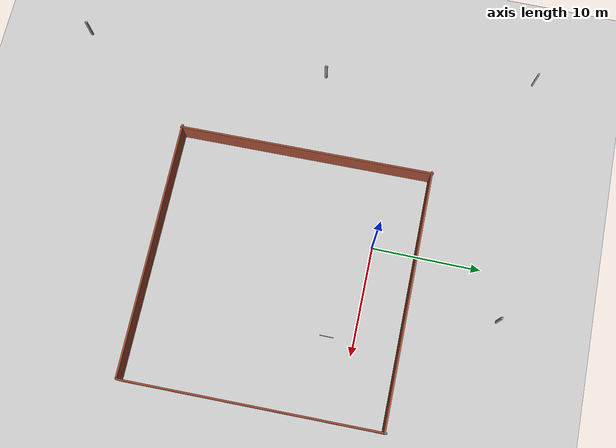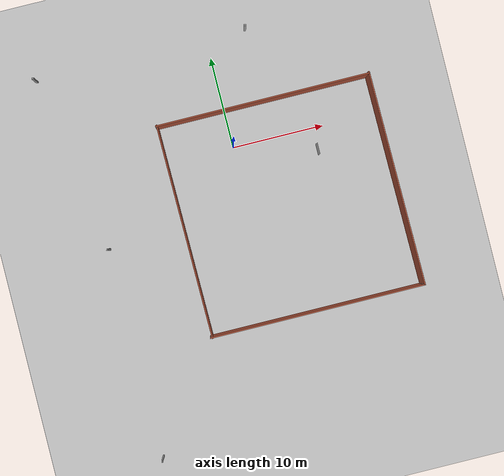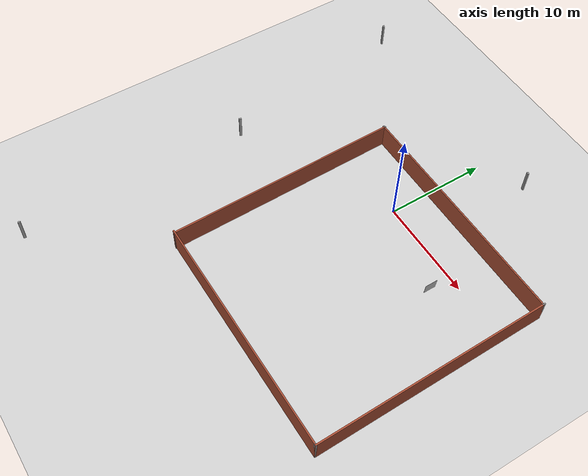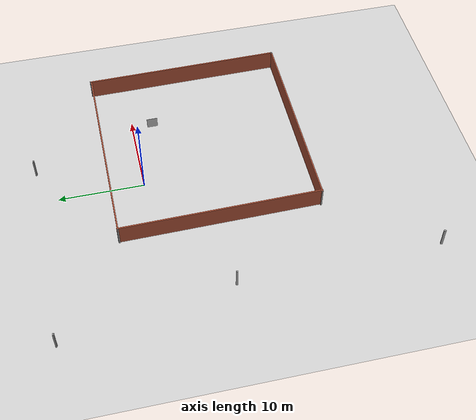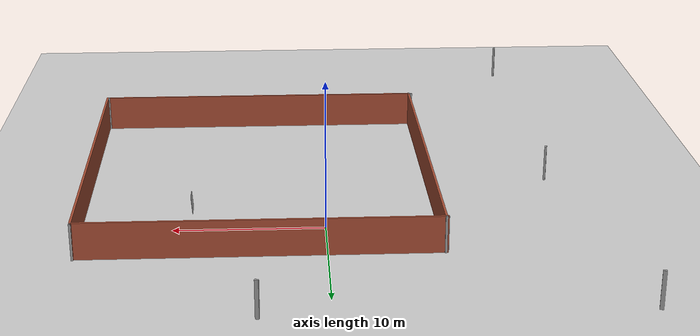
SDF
<sdf version="1.7">
 <world name="default">
  <light name="sun" type="directional">
   <pose>0 0 10 0 -0 0</pose>
   <diffuse>0.8 0.8 0.8 1</diffuse>
   <specular>0.2 0.2 0.2 1</specular>
   <attenuation>
    <range>1000</range>
    <constant>0.9</constant>
    <linear>0.01</linear>
    <quadratic>0.001</quadratic>
   </attenuation>
   <direction>-0.5 0.1 -0.9</direction>
   <spot><inner_angle>0</inner_angle><outer_angle>0</outer_angle><falloff>0</falloff></spot>
  </light>
  <model name="ground_plane">
   <static>1</static>
   <link name="link">
    <collision name="collision">
     <geometry><plane><normal>0 0 1</normal><size>100 100</size></plane></geometry>
     <surface>
      <contact><collide_bitmask>65535</collide_bitmask></contact>
      <friction><ode><mu>100</mu><mu2>50</mu2></ode></friction>
     </surface>
    </collision>
    <visual name="visual">
     <cast_shadows>0</cast_shadows>
     <geometry><plane><normal>0 0 1</normal><size>100 100</size></plane></geometry>
     <material>
      <script><uri>file://media/materials/scripts/gazebo.material</uri><name>Gazebo/Grey</name></script>
     </material>
    </visual>
   </link>
  </model>
  <gravity>0 0 -9.8</gravity>
  <magnetic_field>6e-06 2.3e-05 -4.2e-05</magnetic_field>
  <atmosphere type="adiabatic"/>
  <physics type="ode">
   <max_step_size>0.001</max_step_size>
   <real_time_factor>1</real_time_factor>
   <real_time_update_rate>1000</real_time_update_rate>
  </physics>
  <scene><ambient>0.4 0.4 0.4 1</ambient><background>0.7 0.7 0.7 1</background><shadows>1</shadows></scene>
  <spherical_coordinates>
   <surface_model>EARTH_WGS84</surface_model>
   <latitude_deg>0</latitude_deg>
   <longitude_deg>0</longitude_deg>
   <elevation>0</elevation>
   <heading_deg>0</heading_deg>
  </spherical_coordinates>
  <model name="wall">
   <pose>0.2898 -23.1624 0 0 -0 0</pose>
   <link name="Wall_0">
    <collision name="Wall_0_Collision">
     <geometry><box><size>0.25 0.15 2.5</size></box></geometry>
     <pose>0 0 1.25 0 -0 0</pose>
    </collision>
    <visual name="Wall_0_Visual">
     <pose>0 0 1.25 0 -0 0</pose>
     <geometry><box><size>0.25 0.15 2.5</size></box></geometry>
     <material>
      <script><uri>file://media/materials/scripts/gazebo.material</uri><name>Gazebo/Grey</name></script>
      <ambient>1 1 1 1</ambient>
     </material>
     <meta><layer>0</layer></meta>
    </visual>
    <pose>-15.7636 -7.58078 0 0 -0 1.309</pose>
   </link>
   <link name="Wall_2">
    <collision name="Wall_2_Collision">
     <geometry><box><size>0.16 0.15 2.5</size></box></geometry>
     <pose>0 0 1.25 0 -0 0</pose>
    </collision>
    <visual name="Wall_2_Visual">
     <pose>0 0 1.25 0 -0 0</pose>
     <geometry><box><size>0.16 0.15 2.5</size></box></geometry>
     <material>
      <script><uri>file://media/materials/scripts/gazebo.material</uri><name>Gazebo/Grey</name></script>
      <ambient>1 1 1 1</ambient>
     </material>
     <meta><layer>0</layer></meta>
    </visual>
    <pose>-7.56157 3.88093 0 0 -0 0</pose>
   </link>
   <link name="Wall_3">
    <collision name="Wall_3_Collision">
     <geometry><box><size>23.5 0.15 2.5</size></box></geometry>
     <pose>0 0 1.25 0 -0 0</pose>
    </collision>
    <visual name="Wall_3_Visual">
     <pose>0 0 1.25 0 -0 0</pose>
     <geometry><box><size>23.5 0.15 2.5</size></box></geometry>
     <material>
      <script><uri>file://media/materials/scripts/gazebo.material</uri><name>Gazebo/Bricks</name></script>
      <ambient>0.921569 0.807843 0.615686 1</ambient>
     </material>
     <meta><layer>0</layer></meta>
    </visual>
    <pose>4.11843 3.88093 0 0 -0 0</pose>
   </link>
   <link name="Wall_4">
    <collision name="Wall_4_Collision">
     <geometry><box><size>0.15 0.15 2.5</size></box></geometry>
     <pose>0 0 1.25 0 -0 0</pose>
    </collision>
    <visual name="Wall_4_Visual">
     <pose>0 0 1.25 0 -0 0</pose>
     <geometry><box><size>0.15 0.15 2.5</size></box></geometry>
     <material>
      <script><uri>file://media/materials/scripts/gazebo.material</uri><name>Gazebo/Grey</name></script>
      <ambient>1 1 1 1</ambient>
     </material>
     <meta><layer>0</layer></meta>
    </visual>
    <pose>15.7934 3.88093 0 0 -0 0</pose>
   </link>
   <static>1</static>
  </model>
  <model name="wall_0">
   <pose>0.0727 0.08306 0 0 -0 0</pose>
   <link name="Wall_0">
    <collision name="Wall_0_Collision">
     <geometry><box><size>0.25 0.15 2.5</size></box></geometry>
     <pose>0 0 1.25 0 -0 0</pose>
    </collision>
    <visual name="Wall_0_Visual">
     <pose>0 0 1.25 0 -0 0</pose>
     <geometry><box><size>0.25 0.15 2.5</size></box></geometry>
     <material>
      <script><uri>file://media/materials/scripts/gazebo.material</uri><name>Gazebo/Grey</name></script>
      <ambient>1 1 1 1</ambient>
     </material>
     <meta><layer>0</layer></meta>
    </visual>
    <pose>-15.7636 -7.58078 0 0 -0 1.309</pose>
   </link>
   <link name="Wall_2">
    <collision name="Wall_2_Collision">
     <geometry><box><size>0.16 0.15 2.5</size></box></geometry>
     <pose>0 0 1.25 0 -0 0</pose>
    </collision>
    <visual name="Wall_2_Visual">
     <pose>0 0 1.25 0 -0 0</pose>
     <geometry><box><size>0.16 0.15 2.5</size></box></geometry>
     <material>
      <script><uri>file://media/materials/scripts/gazebo.material</uri><name>Gazebo/Grey</name></script>
      <ambient>1 1 1 1</ambient>
     </material>
     <meta><layer>0</layer></meta>
    </visual>
    <pose>-7.56157 3.88093 0 0 -0 0</pose>
   </link>
   <link name="Wall_3">
    <collision name="Wall_3_Collision">
     <geometry><box><size>23.5 0.15 2.5</size></box></geometry>
     <pose>0 0 1.25 0 -0 0</pose>
    </collision>
    <visual name="Wall_3_Visual">
     <pose>0 0 1.25 0 -0 0</pose>
     <geometry><box><size>23.5 0.15 2.5</size></box></geometry>
     <material>
      <script><uri>file://media/materials/scripts/gazebo.material</uri><name>Gazebo/Bricks</name></script>
      <ambient>0.921569 0.807843 0.615686 1</ambient>
     </material>
     <meta><layer>0</layer></meta>
    </visual>
    <pose>4.11843 3.88093 0 0 -0 0</pose>
   </link>
   <link name="Wall_4">
    <collision name="Wall_4_Collision">
     <geometry><box><size>0.15 0.15 2.5</size></box></geometry>
     <pose>0 0 1.25 0 -0 0</pose>
    </collision>
    <visual name="Wall_4_Visual">
     <pose>0 0 1.25 0 -0 0</pose>
     <geometry><box><size>0.15 0.15 2.5</size></box></geometry>
     <material>
      <script><uri>file://media/materials/scripts/gazebo.material</uri><name>Gazebo/Grey</name></script>
      <ambient>1 1 1 1</ambient>
     </material>
     <meta><layer>0</layer></meta>
    </visual>
    <pose>15.7934 3.88093 0 0 -0 0</pose>
   </link>
   <static>1</static>
  </model>
  <model name="wall_1">
   <pose>12.1026 -3.53022 0 0 0 -1.55795</pose>
   <link name="Wall_0">
    <collision name="Wall_0_Collision">
     <geometry><box><size>0.25 0.15 2.5</size></box></geometry>
     <pose>0 0 1.25 0 -0 0</pose>
    </collision>
    <visual name="Wall_0_Visual">
     <pose>0 0 1.25 0 -0 0</pose>
     <geometry><box><size>0.25 0.15 2.5</size></box></geometry>
     <material>
      <script><uri>file://media/materials/scripts/gazebo.material</uri><name>Gazebo/Grey</name></script>
      <ambient>1 1 1 1</ambient>
     </material>
     <meta><layer>0</layer></meta>
    </visual>
    <pose>-15.7636 -7.58078 0 0 -0 1.309</pose>
   </link>
   <link name="Wall_2">
    <collision name="Wall_2_Collision">
     <geometry><box><size>0.16 0.15 2.5</size></box></geometry>
     <pose>0 0 1.25 0 -0 0</pose>
    </collision>
    <visual name="Wall_2_Visual">
     <pose>0 0 1.25 0 -0 0</pose>
     <geometry><box><size>0.16 0.15 2.5</size></box></geometry>
     <material>
      <script><uri>file://media/materials/scripts/gazebo.material</uri><name>Gazebo/Grey</name></script>
      <ambient>1 1 1 1</ambient>
     </material>
     <meta><layer>0</layer></meta>
    </visual>
    <pose>-7.56157 3.88093 0 0 -0 0</pose>
   </link>
   <link name="Wall_3">
    <collision name="Wall_3_Collision">
     <geometry><box><size>23.5 0.15 2.5</size></box></geometry>
     <pose>0 0 1.25 0 -0 0</pose>
    </collision>
    <visual name="Wall_3_Visual">
     <pose>0 0 1.25 0 -0 0</pose>
     <geometry><box><size>23.5 0.15 2.5</size></box></geometry>
     <material>
      <script><uri>file://media/materials/scripts/gazebo.material</uri><name>Gazebo/Bricks</name></script>
      <ambient>0.921569 0.807843 0.615686 1</ambient>
     </material>
     <meta><layer>0</layer></meta>
    </visual>
    <pose>4.11843 3.88093 0 0 -0 0</pose>
   </link>
   <link name="Wall_4">
    <collision name="Wall_4_Collision">
     <geometry><box><size>0.15 0.15 2.5</size></box></geometry>
     <pose>0 0 1.25 0 -0 0</pose>
    </collision>
    <visual name="Wall_4_Visual">
     <pose>0 0 1.25 0 -0 0</pose>
     <geometry><box><size>0.15 0.15 2.5</size></box></geometry>
     <material>
      <script><uri>file://media/materials/scripts/gazebo.material</uri><name>Gazebo/Grey</name></script>
      <ambient>1 1 1 1</ambient>
     </material>
     <meta><layer>0</layer></meta>
    </visual>
    <pose>15.7934 3.88093 0 0 -0 0</pose>
   </link>
   <static>1</static>
  </model>
  <model name="wall_1_clone">
   <pose>-11.1765 -3.59212 0 0 0 -1.55795</pose>
   <link name="Wall_0">
    <collision name="Wall_0_Collision">
     <geometry><box><size>0.25 0.15 2.5</size></box></geometry>
     <pose>0 0 1.25 0 -0 0</pose>
    </collision>
    <visual name="Wall_0_Visual">
     <pose>0 0 1.25 0 -0 0</pose>
     <geometry><box><size>0.25 0.15 2.5</size></box></geometry>
     <material>
      <script><uri>file://media/materials/scripts/gazebo.material</uri><name>Gazebo/Grey</name></script>
      <ambient>1 1 1 1</ambient>
     </material>
     <meta><layer>0</layer></meta>
    </visual>
    <pose>-15.7636 -7.58078 0 0 -0 1.309</pose>
   </link>
   <link name="Wall_2">
    <collision name="Wall_2_Collision">
     <geometry><box><size>0.16 0.15 2.5</size></box></geometry>
     <pose>0 0 1.25 0 -0 0</pose>
    </collision>
    <visual name="Wall_2_Visual">
     <pose>0 0 1.25 0 -0 0</pose>
     <geometry><box><size>0.16 0.15 2.5</size></box></geometry>
     <material>
      <script><uri>file://media/materials/scripts/gazebo.material</uri><name>Gazebo/Grey</name></script>
      <ambient>1 1 1 1</ambient>
     </material>
     <meta><layer>0</layer></meta>
    </visual>
    <pose>-7.56157 3.88093 0 0 -0 0</pose>
   </link>
   <link name="Wall_3">
    <collision name="Wall_3_Collision">
     <geometry><box><size>23.5 0.15 2.5</size></box></geometry>
     <pose>0 0 1.25 0 -0 0</pose>
    </collision>
    <visual name="Wall_3_Visual">
     <pose>0 0 1.25 0 -0 0</pose>
     <geometry><box><size>23.5 0.15 2.5</size></box></geometry>
     <material>
      <script><uri>file://media/materials/scripts/gazebo.material</uri><name>Gazebo/Bricks</name></script>
      <ambient>0.921569 0.807843 0.615686 1</ambient>
     </material>
     <meta><layer>0</layer></meta>
    </visual>
    <pose>4.11843 3.88093 0 0 -0 0</pose>
   </link>
   <link name="Wall_4">
    <collision name="Wall_4_Collision">
     <geometry><box><size>0.15 0.15 2.5</size></box></geometry>
     <pose>0 0 1.25 0 -0 0</pose>
    </collision>
    <visual name="Wall_4_Visual">
     <pose>0 0 1.25 0 -0 0</pose>
     <geometry><box><size>0.15 0.15 2.5</size></box></geometry>
     <material>
      <script><uri>file://media/materials/scripts/gazebo.material</uri><name>Gazebo/Grey</name></script>
      <ambient>1 1 1 1</ambient>
     </material>
     <meta><layer>0</layer></meta>
    </visual>
    <pose>15.7934 3.88093 0 0 -0 0</pose>
   </link>
   <static>1</static>
  </model>
  <model name="Apriltag36_11_00000">
   <link name="main">
    <visual name="main_Visual">
     <geometry><box><size>1.25 1.25 0.01</size></box></geometry>
     <material>
      <script>
       <uri>model://Apriltag36_11_00000/materials/scripts</uri>
       <uri>model://Apriltag36_11_00000/materials/textures</uri>
       <name>Apriltag36_11_00000</name>
      </script>
     </material>
    </visual>
   </link>
   <static>1</static>
   <pose>8.80739 -2.43219 0.952178 0 -1.49534 0</pose>
  </model>
 </world>
</sdf>
